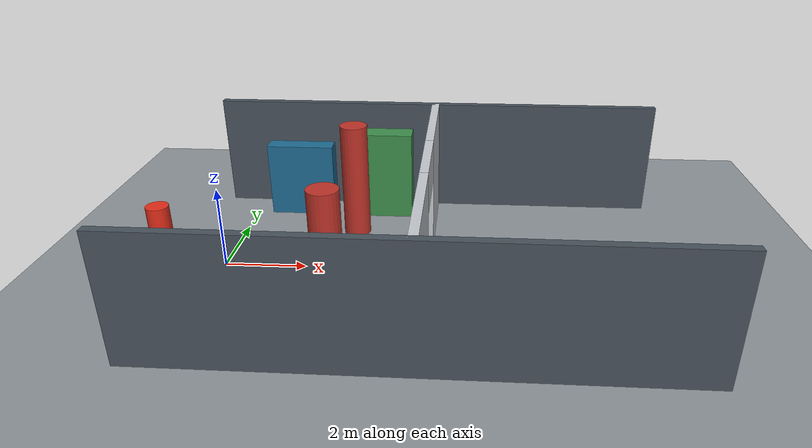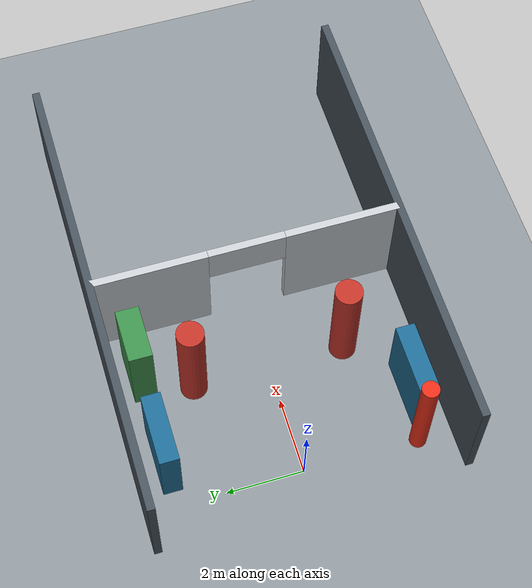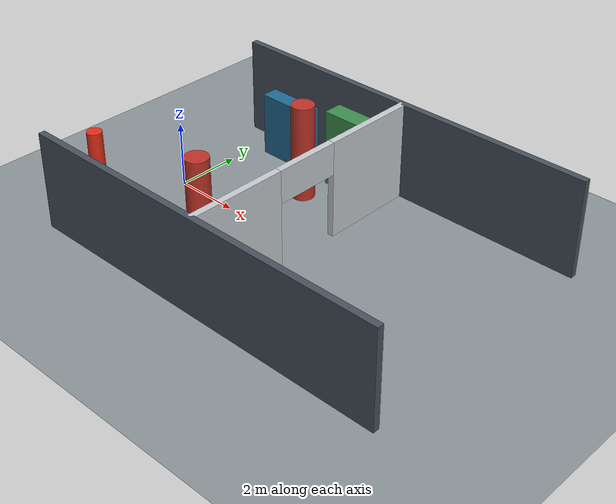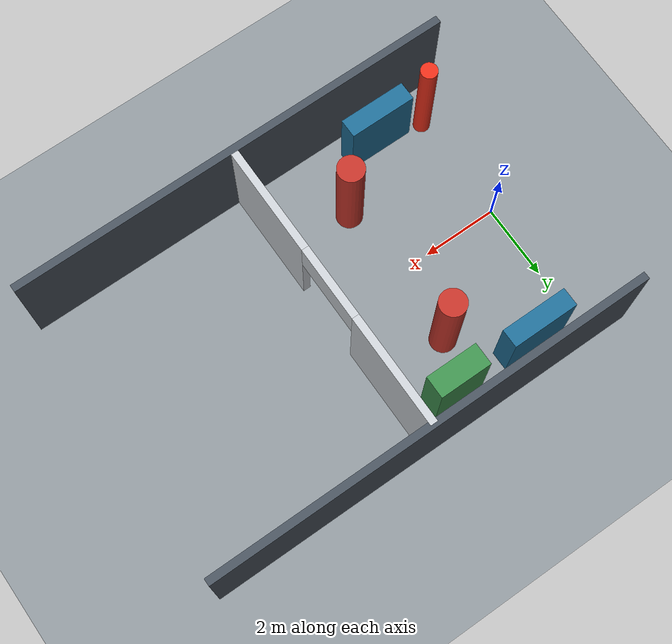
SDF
<?xml version="1.0" encoding="UTF-8"?>
<sdf version="1.9">
  <world name="inspection">
    <physics type="ode">
      <max_step_size>0.004</max_step_size>
      <real_time_factor>1.0</real_time_factor>
      <real_time_update_rate>250</real_time_update_rate>
    </physics>
    <gravity>0 0 -9.8</gravity>
    <magnetic_field>6e-06 2.3e-05 -4.2e-05</magnetic_field>
    <atmosphere type="adiabatic"/>

    <plugin filename="gz-sim-physics-system" name="gz::sim::systems::Physics"/>
    <plugin filename="gz-sim-user-commands-system" name="gz::sim::systems::UserCommands"/>
    <plugin filename="gz-sim-scene-broadcaster-system" name="gz::sim::systems::SceneBroadcaster"/>
    <plugin filename="gz-sim-contact-system" name="gz::sim::systems::Contact"/>
    <plugin filename="gz-sim-imu-system" name="gz::sim::systems::Imu"/>
    <plugin filename="gz-sim-air-pressure-system" name="gz::sim::systems::AirPressure"/>
    <plugin filename="gz-sim-air-speed-system" name="gz::sim::systems::AirSpeed"/>
    <plugin filename="gz-sim-apply-link-wrench-system" name="gz::sim::systems::ApplyLinkWrench"/>
    <plugin filename="gz-sim-navsat-system" name="gz::sim::systems::NavSat"/>
    <plugin filename="gz-sim-magnetometer-system" name="gz::sim::systems::Magnetometer"/>
    <plugin filename="gz-sim-sensors-system" name="gz::sim::systems::Sensors">
      <render_engine>ogre2</render_engine>
    </plugin>

    <scene>
      <grid>true</grid>
      <ambient>0.45 0.45 0.45 1</ambient>
      <background>0.72 0.78 0.82 1</background>
      <shadows>true</shadows>
    </scene>

    <model name="ground_plane">
      <static>true</static>
      <link name="link">
        <collision name="collision">
          <geometry>
            <plane><normal>0 0 1</normal><size>30 30</size></plane>
          </geometry>
        </collision>
        <visual name="visual">
          <geometry>
            <plane><normal>0 0 1</normal><size>30 30</size></plane>
          </geometry>
          <material>
            <ambient>0.55 0.58 0.60 1</ambient>
            <diffuse>0.55 0.58 0.60 1</diffuse>
          </material>
        </visual>
      </link>
    </model>

    <model name="left_wall">
      <static>true</static>
      <pose>5 -4 1.5 0 0 0</pose>
      <link name="link">
        <collision name="collision"><geometry><box><size>12 0.2 3</size></box></geometry></collision>
        <visual name="visual"><geometry><box><size>12 0.2 3</size></box></geometry><material><diffuse>0.28 0.32 0.36 1</diffuse></material></visual>
      </link>
    </model>

    <model name="right_wall">
      <static>true</static>
      <pose>5 4 1.5 0 0 0</pose>
      <link name="link">
        <collision name="collision"><geometry><box><size>12 0.2 3</size></box></geometry></collision>
        <visual name="visual"><geometry><box><size>12 0.2 3</size></box></geometry><material><diffuse>0.28 0.32 0.36 1</diffuse></material></visual>
      </link>
    </model>

    <model name="door_left">
      <static>true</static>
      <pose>5 -2.5 1.5 0 0 0</pose>
      <link name="link">
        <collision name="collision"><geometry><box><size>0.2 3 3</size></box></geometry></collision>
        <visual name="visual"><geometry><box><size>0.2 3 3</size></box></geometry><material><diffuse>0.78 0.80 0.82 1</diffuse></material></visual>
      </link>
    </model>

    <model name="door_right">
      <static>true</static>
      <pose>5 2.5 1.5 0 0 0</pose>
      <link name="link">
        <collision name="collision"><geometry><box><size>0.2 3 3</size></box></geometry></collision>
        <visual name="visual"><geometry><box><size>0.2 3 3</size></box></geometry><material><diffuse>0.78 0.80 0.82 1</diffuse></material></visual>
      </link>
    </model>

    <model name="door_top">
      <static>true</static>
      <pose>5 0 2.5 0 0 0</pose>
      <link name="link">
        <collision name="collision"><geometry><box><size>0.2 2 1</size></box></geometry></collision>
        <visual name="visual"><geometry><box><size>0.2 2 1</size></box></geometry><material><diffuse>0.78 0.80 0.82 1</diffuse></material></visual>
      </link>
    </model>

    <model name="column_left">
      <static>true</static>
      <pose>3 -2 1.5 0 0 0</pose>
      <link name="link">
        <collision name="collision"><geometry><cylinder><radius>0.35</radius><length>3</length></cylinder></geometry></collision>
        <visual name="visual"><geometry><cylinder><radius>0.35</radius><length>3</length></cylinder></geometry><material><diffuse>0.75 0.20 0.16 1</diffuse></material></visual>
      </link>
    </model>

    <model name="column_right">
      <static>true</static>
      <pose>3 2 1.5 0 0 0</pose>
      <link name="link">
        <collision name="collision"><geometry><cylinder><radius>0.35</radius><length>3</length></cylinder></geometry></collision>
        <visual name="visual"><geometry><cylinder><radius>0.35</radius><length>3</length></cylinder></geometry><material><diffuse>0.75 0.20 0.16 1</diffuse></material></visual>
      </link>
    </model>

    <model name="warehouse_rack_left">
      <static>true</static>
      <pose>1.3 -3.25 1.0 0 0 0</pose>
      <link name="link">
        <collision name="collision"><geometry><box><size>1.8 0.5 2.0</size></box></geometry></collision>
        <visual name="visual"><geometry><box><size>1.8 0.5 2.0</size></box></geometry><material><diffuse>0.12 0.42 0.58 1</diffuse></material></visual>
      </link>
    </model>

    <model name="warehouse_rack_right">
      <static>true</static>
      <pose>1.3 3.25 1.0 0 0 0</pose>
      <link name="link">
        <collision name="collision"><geometry><box><size>1.8 0.5 2.0</size></box></geometry></collision>
        <visual name="visual"><geometry><box><size>1.8 0.5 2.0</size></box></geometry><material><diffuse>0.12 0.42 0.58 1</diffuse></material></visual>
      </link>
    </model>

    <model name="substation_cabinet">
      <static>true</static>
      <pose>3.7 3.25 1.2 0 0 0</pose>
      <link name="link">
        <collision name="collision"><geometry><box><size>1.4 0.6 2.4</size></box></geometry></collision>
        <visual name="visual"><geometry><box><size>1.4 0.6 2.4</size></box></geometry><material><diffuse>0.24 0.56 0.30 1</diffuse></material></visual>
      </link>
    </model>

    <!-- Project-owned M3 blocker. It starts outside the camera route and is
         moved into the route by scripts/m3_dynamic_blocker.py. -->
    <model name="m3_dynamic_blocker">
      <static>true</static>
      <pose>0 -3 1.5 0 0 0</pose>
      <link name="link">
        <collision name="collision">
          <geometry>
            <cylinder><radius>0.22</radius><length>3</length></cylinder>
          </geometry>
        </collision>
        <visual name="visual">
          <geometry>
            <cylinder><radius>0.22</radius><length>3</length></cylinder>
          </geometry>
          <material>
            <ambient>0.85 0.12 0.08 1</ambient>
            <diffuse>0.90 0.18 0.10 1</diffuse>
          </material>
        </visual>
      </link>
    </model>

    <light name="sun" type="directional">
      <pose>0 0 10 0 0 0</pose>
      <cast_shadows>true</cast_shadows>
      <direction>-0.3 0.2 -0.9</direction>
      <diffuse>0.9 0.9 0.9 1</diffuse>
      <specular>0.2 0.2 0.2 1</specular>
      <attenuation><range>1000</range><constant>0.9</constant><linear>0.01</linear><quadratic>0.001</quadratic></attenuation>
    </light>

    <spherical_coordinates>
      <surface_model>EARTH_WGS84</surface_model>
      <world_frame_orientation>ENU</world_frame_orientation>
      <latitude_deg>47.397971057728974</latitude_deg>
      <longitude_deg>8.546163739800146</longitude_deg>
      <elevation>0</elevation>
    </spherical_coordinates>
  </world>
</sdf>
